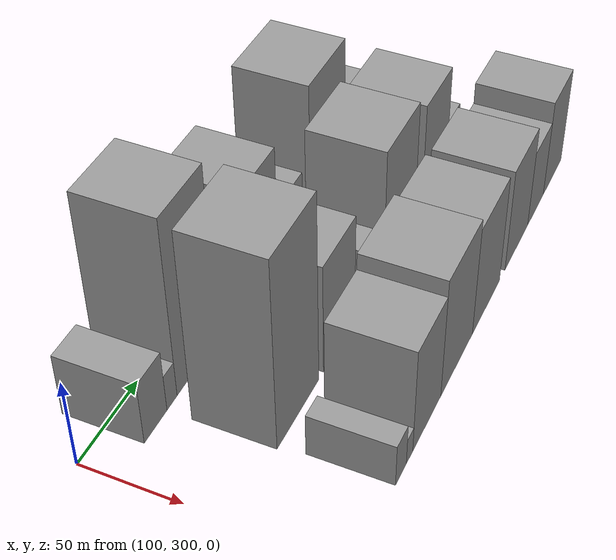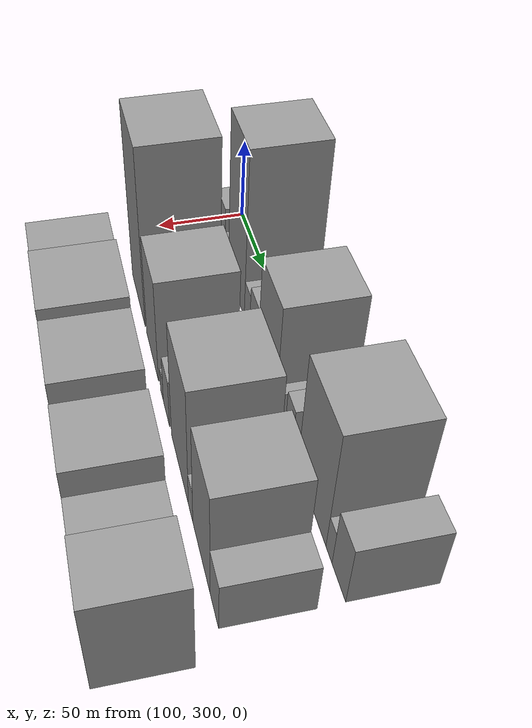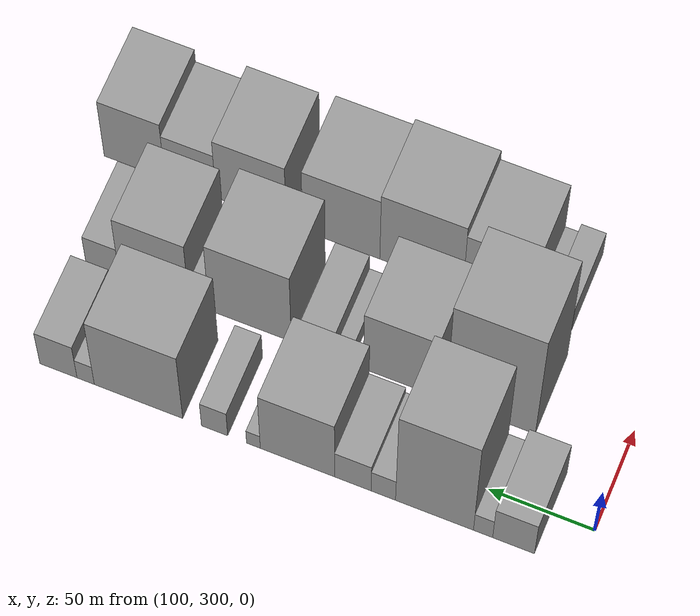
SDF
<sdf version="1.6">
 <world name="default">
  <model name="building_29">
   <static>1</static>
   <pose>100.0000 330.5013 0 0.000000 0.000000 0.000000</pose>
   <link name="link">
    <pose>0 0 18.00 0 0 0</pose>
    <collision name="collision"><geometry><box><size>40.0000 19.5408 36.0000</size></box></geometry></collision>
    <visual name="visual">
     <cast_shadows>0</cast_shadows>
     <geometry><box><size>40.0000 19.5408 36.0000</size></box></geometry>
     <material>
      <script>
       <uri>model://grey_wall/materials/scripts</uri>
       <uri>model://grey_wall/materials/textures</uri>
       <name>vrc/grey_wall</name>
      </script>
     </material>
    </visual>
   </link>
  </model>
  <model name="building_30">
   <static>1</static>
   <pose>100.0000 344.7738 0 0.000000 0.000000 0.000000</pose>
   <link name="link">
    <pose>0 0 10.50 0 0 0</pose>
    <collision name="collision"><geometry><box><size>40.0000 9.0042 21.0000</size></box></geometry></collision>
    <visual name="visual">
     <cast_shadows>0</cast_shadows>
     <geometry><box><size>40.0000 9.0042 21.0000</size></box></geometry>
     <material>
      <script>
       <uri>model://grey_wall/materials/scripts</uri>
       <uri>model://grey_wall/materials/textures</uri>
       <name>vrc/grey_wall</name>
      </script>
     </material>
    </visual>
   </link>
  </model>
  <model name="building_31">
   <static>1</static>
   <pose>100.0000 367.6238 0 0.000000 0.000000 0.000000</pose>
   <link name="link">
    <pose>0 0 51.00 0 0 0</pose>
    <collision name="collision"><geometry><box><size>40.0000 36.6956 102.0000</size></box></geometry></collision>
    <visual name="visual">
     <cast_shadows>0</cast_shadows>
     <geometry><box><size>40.0000 36.6956 102.0000</size></box></geometry>
     <material>
      <script>
       <uri>model://grey_wall/materials/scripts</uri>
       <uri>model://grey_wall/materials/textures</uri>
       <name>vrc/grey_wall</name>
      </script>
     </material>
    </visual>
   </link>
  </model>
  <model name="building_32">
   <static>1</static>
   <pose>100.0000 391.7401 0 0.000000 0.000000 0.000000</pose>
   <link name="link">
    <pose>0 0 12.00 0 0 0</pose>
    <collision name="collision"><geometry><box><size>40.0000 11.5371 24.0000</size></box></geometry></collision>
    <visual name="visual">
     <cast_shadows>0</cast_shadows>
     <geometry><box><size>40.0000 11.5371 24.0000</size></box></geometry>
     <material>
      <script>
       <uri>model://grey_wall/materials/scripts</uri>
       <uri>model://grey_wall/materials/textures</uri>
       <name>vrc/grey_wall</name>
      </script>
     </material>
    </visual>
   </link>
  </model>
  <model name="building_33">
   <static>1</static>
   <pose>100.0000 406.1605 0 0.000000 0.000000 0.000000</pose>
   <link name="link">
    <pose>0 0 15.00 0 0 0</pose>
    <collision name="collision"><geometry><box><size>40.0000 17.3037 30.0000</size></box></geometry></collision>
    <visual name="visual">
     <cast_shadows>0</cast_shadows>
     <geometry><box><size>40.0000 17.3037 30.0000</size></box></geometry>
     <material>
      <script>
       <uri>model://grey_wall/materials/scripts</uri>
       <uri>model://grey_wall/materials/textures</uri>
       <name>vrc/grey_wall</name>
      </script>
     </material>
    </visual>
   </link>
  </model>
  <model name="building_34">
   <static>1</static>
   <pose>100.0000 432.5061 0 0.000000 0.000000 0.000000</pose>
   <link name="link">
    <pose>0 0 31.50 0 0 0</pose>
    <collision name="collision"><geometry><box><size>40.0000 35.3875 63.0000</size></box></geometry></collision>
    <visual name="visual">
     <cast_shadows>0</cast_shadows>
     <geometry><box><size>40.0000 35.3875 63.0000</size></box></geometry>
     <material>
      <script>
       <uri>model://grey_wall/materials/scripts</uri>
       <uri>model://grey_wall/materials/textures</uri>
       <name>vrc/grey_wall</name>
      </script>
     </material>
    </visual>
   </link>
  </model>
  <model name="building_35">
   <static>1</static>
   <pose>100.0000 453.4936 0 0.000000 0.000000 0.000000</pose>
   <link name="link">
    <pose>0 0 7.50 0 0 0</pose>
    <collision name="collision"><geometry><box><size>40.0000 6.5874 15.0000</size></box></geometry></collision>
    <visual name="visual">
     <cast_shadows>0</cast_shadows>
     <geometry><box><size>40.0000 6.5874 15.0000</size></box></geometry>
     <material>
      <script>
       <uri>model://grey_wall/materials/scripts</uri>
       <uri>model://grey_wall/materials/textures</uri>
       <name>vrc/grey_wall</name>
      </script>
     </material>
    </visual>
   </link>
  </model>
  <model name="building_36">
   <static>1</static>
   <pose>100.0000 472.0813 0 0.000000 0.000000 0.000000</pose>
   <link name="link">
    <pose>0 0 13.50 0 0 0</pose>
    <collision name="collision"><geometry><box><size>40.0000 12.5881 27.0000</size></box></geometry></collision>
    <visual name="visual">
     <cast_shadows>0</cast_shadows>
     <geometry><box><size>40.0000 12.5881 27.0000</size></box></geometry>
     <material>
      <script>
       <uri>model://grey_wall/materials/scripts</uri>
       <uri>model://grey_wall/materials/textures</uri>
       <name>vrc/grey_wall</name>
      </script>
     </material>
    </visual>
   </link>
  </model>
  <model name="building_37">
   <static>1</static>
   <pose>100.0000 508.7297 0 0.000000 0.000000 0.000000</pose>
   <link name="link">
    <pose>0 0 36.00 0 0 0</pose>
    <collision name="collision"><geometry><box><size>40.0000 42.7086 72.0000</size></box></geometry></collision>
    <visual name="visual">
     <cast_shadows>0</cast_shadows>
     <geometry><box><size>40.0000 42.7086 72.0000</size></box></geometry>
     <material>
      <script>
       <uri>model://grey_wall/materials/scripts</uri>
       <uri>model://grey_wall/materials/textures</uri>
       <name>vrc/grey_wall</name>
      </script>
     </material>
    </visual>
   </link>
  </model>
  <model name="building_38">
   <static>1</static>
   <pose>100.0000 534.2845 0 0.000000 0.000000 0.000000</pose>
   <link name="link">
    <pose>0 0 10.50 0 0 0</pose>
    <collision name="collision"><geometry><box><size>40.0000 8.4009 21.0000</size></box></geometry></collision>
    <visual name="visual">
     <cast_shadows>0</cast_shadows>
     <geometry><box><size>40.0000 8.4009 21.0000</size></box></geometry>
     <material>
      <script>
       <uri>model://grey_wall/materials/scripts</uri>
       <uri>model://grey_wall/materials/textures</uri>
       <name>vrc/grey_wall</name>
      </script>
     </material>
    </visual>
   </link>
  </model>
  <model name="building_39">
   <static>1</static>
   <pose>100.0000 547.5120 0 0.000000 0.000000 0.000000</pose>
   <link name="link">
    <pose>0 0 18.00 0 0 0</pose>
    <collision name="collision"><geometry><box><size>40.0000 18.0543 36.0000</size></box></geometry></collision>
    <visual name="visual">
     <cast_shadows>0</cast_shadows>
     <geometry><box><size>40.0000 18.0543 36.0000</size></box></geometry>
     <material>
      <script>
       <uri>model://grey_wall/materials/scripts</uri>
       <uri>model://grey_wall/materials/textures</uri>
       <name>vrc/grey_wall</name>
      </script>
     </material>
    </visual>
   </link>
  </model>
  <model name="building_65">
   <static>1</static>
   <pose>152.0000 361.3127 0 0.000000 0.000000 0.000000</pose>
   <link name="link">
    <pose>0 0 54.00 0 0 0</pose>
    <collision name="collision"><geometry><box><size>40.0000 42.1664 108.0000</size></box></geometry></collision>
    <visual name="visual">
     <cast_shadows>0</cast_shadows>
     <geometry><box><size>40.0000 42.1664 108.0000</size></box></geometry>
     <material>
      <script>
       <uri>model://grey_wall/materials/scripts</uri>
       <uri>model://grey_wall/materials/textures</uri>
       <name>vrc/grey_wall</name>
      </script>
     </material>
    </visual>
   </link>
  </model>
  <model name="building_66">
   <static>1</static>
   <pose>152.0000 404.7607 0 0.000000 0.000000 0.000000</pose>
   <link name="link">
    <pose>0 0 31.50 0 0 0</pose>
    <collision name="collision"><geometry><box><size>40.0000 34.7295 63.0000</size></box></geometry></collision>
    <visual name="visual">
     <cast_shadows>0</cast_shadows>
     <geometry><box><size>40.0000 34.7295 63.0000</size></box></geometry>
     <material>
      <script>
       <uri>model://grey_wall/materials/scripts</uri>
       <uri>model://grey_wall/materials/textures</uri>
       <name>vrc/grey_wall</name>
      </script>
     </material>
    </visual>
   </link>
  </model>
  <model name="building_67">
   <static>1</static>
   <pose>152.0000 431.7771 0 0.000000 0.000000 0.000000</pose>
   <link name="link">
    <pose>0 0 7.50 0 0 0</pose>
    <collision name="collision"><geometry><box><size>40.0000 7.3034 15.0000</size></box></geometry></collision>
    <visual name="visual">
     <cast_shadows>0</cast_shadows>
     <geometry><box><size>40.0000 7.3034 15.0000</size></box></geometry>
     <material>
      <script>
       <uri>model://grey_wall/materials/scripts</uri>
       <uri>model://grey_wall/materials/textures</uri>
       <name>vrc/grey_wall</name>
      </script>
     </material>
    </visual>
   </link>
  </model>
  <model name="building_68">
   <static>1</static>
   <pose>152.0000 443.6562 0 0.000000 0.000000 0.000000</pose>
   <link name="link">
    <pose>0 0 15.00 0 0 0</pose>
    <collision name="collision"><geometry><box><size>40.0000 16.4549 30.0000</size></box></geometry></collision>
    <visual name="visual">
     <cast_shadows>0</cast_shadows>
     <geometry><box><size>40.0000 16.4549 30.0000</size></box></geometry>
     <material>
      <script>
       <uri>model://grey_wall/materials/scripts</uri>
       <uri>model://grey_wall/materials/textures</uri>
       <name>vrc/grey_wall</name>
      </script>
     </material>
    </visual>
   </link>
  </model>
  <model name="building_69">
   <static>1</static>
   <pose>152.0000 476.8452 0 0.000000 0.000000 0.000000</pose>
   <link name="link">
    <pose>0 0 36.00 0 0 0</pose>
    <collision name="collision"><geometry><box><size>40.0000 39.9231 72.0000</size></box></geometry></collision>
    <visual name="visual">
     <cast_shadows>0</cast_shadows>
     <geometry><box><size>40.0000 39.9231 72.0000</size></box></geometry>
     <material>
      <script>
       <uri>model://grey_wall/materials/scripts</uri>
       <uri>model://grey_wall/materials/textures</uri>
       <name>vrc/grey_wall</name>
      </script>
     </material>
    </visual>
   </link>
  </model>
  <model name="building_70">
   <static>1</static>
   <pose>152.0000 501.6556 0 0.000000 0.000000 0.000000</pose>
   <link name="link">
    <pose>0 0 10.50 0 0 0</pose>
    <collision name="collision"><geometry><box><size>40.0000 9.6977 21.0000</size></box></geometry></collision>
    <visual name="visual">
     <cast_shadows>0</cast_shadows>
     <geometry><box><size>40.0000 9.6977 21.0000</size></box></geometry>
     <material>
      <script>
       <uri>model://grey_wall/materials/scripts</uri>
       <uri>model://grey_wall/materials/textures</uri>
       <name>vrc/grey_wall</name>
      </script>
     </material>
    </visual>
   </link>
  </model>
  <model name="building_71">
   <static>1</static>
   <pose>152.0000 523.5886 0 0.000000 0.000000 0.000000</pose>
   <link name="link">
    <pose>0 0 31.50 0 0 0</pose>
    <collision name="collision"><geometry><box><size>40.0000 34.1682 63.0000</size></box></geometry></collision>
    <visual name="visual">
     <cast_shadows>0</cast_shadows>
     <geometry><box><size>40.0000 34.1682 63.0000</size></box></geometry>
     <material>
      <script>
       <uri>model://grey_wall/materials/scripts</uri>
       <uri>model://grey_wall/materials/textures</uri>
       <name>vrc/grey_wall</name>
      </script>
     </material>
    </visual>
   </link>
  </model>
  <model name="building_72">
   <static>1</static>
   <pose>152.0000 548.8191 0 0.000000 0.000000 0.000000</pose>
   <link name="link">
    <pose>0 0 15.00 0 0 0</pose>
    <collision name="collision"><geometry><box><size>40.0000 16.2928 30.0000</size></box></geometry></collision>
    <visual name="visual">
     <cast_shadows>0</cast_shadows>
     <geometry><box><size>40.0000 16.2928 30.0000</size></box></geometry>
     <material>
      <script>
       <uri>model://grey_wall/materials/scripts</uri>
       <uri>model://grey_wall/materials/textures</uri>
       <name>vrc/grey_wall</name>
      </script>
     </material>
    </visual>
   </link>
  </model>
  <model name="building_98">
   <static>1</static>
   <pose>204.0000 348.7117 0 0.000000 0.000000 0.000000</pose>
   <link name="link">
    <pose>0 0 12.00 0 0 0</pose>
    <collision name="collision"><geometry><box><size>40.0000 11.8877 24.0000</size></box></geometry></collision>
    <visual name="visual">
     <cast_shadows>0</cast_shadows>
     <geometry><box><size>40.0000 11.8877 24.0000</size></box></geometry>
     <material>
      <script>
       <uri>model://grey_wall/materials/scripts</uri>
       <uri>model://grey_wall/materials/textures</uri>
       <name>vrc/grey_wall</name>
      </script>
     </material>
    </visual>
   </link>
  </model>
  <model name="building_99">
   <static>1</static>
   <pose>204.0000 358.2454 0 0.000000 0.000000 0.000000</pose>
   <link name="link">
    <pose>0 0 7.50 0 0 0</pose>
    <collision name="collision"><geometry><box><size>40.0000 7.1798 15.0000</size></box></geometry></collision>
    <visual name="visual">
     <cast_shadows>0</cast_shadows>
     <geometry><box><size>40.0000 7.1798 15.0000</size></box></geometry>
     <material>
      <script>
       <uri>model://grey_wall/materials/scripts</uri>
       <uri>model://grey_wall/materials/textures</uri>
       <name>vrc/grey_wall</name>
      </script>
     </material>
    </visual>
   </link>
  </model>
  <model name="building_100">
   <static>1</static>
   <pose>204.0000 378.3557 0 0.000000 0.000000 0.000000</pose>
   <link name="link">
    <pose>0 0 30.00 0 0 0</pose>
    <collision name="collision"><geometry><box><size>40.0000 33.0407 60.0000</size></box></geometry></collision>
    <visual name="visual">
     <cast_shadows>0</cast_shadows>
     <geometry><box><size>40.0000 33.0407 60.0000</size></box></geometry>
     <material>
      <script>
       <uri>model://grey_wall/materials/scripts</uri>
       <uri>model://grey_wall/materials/textures</uri>
       <name>vrc/grey_wall</name>
      </script>
     </material>
    </visual>
   </link>
  </model>
  <model name="building_101">
   <static>1</static>
   <pose>204.0000 415.0387 0 0.000000 0.000000 0.000000</pose>
   <link name="link">
    <pose>0 0 34.50 0 0 0</pose>
    <collision name="collision"><geometry><box><size>40.0000 40.3254 69.0000</size></box></geometry></collision>
    <visual name="visual">
     <cast_shadows>0</cast_shadows>
     <geometry><box><size>40.0000 40.3254 69.0000</size></box></geometry>
     <material>
      <script>
       <uri>model://grey_wall/materials/scripts</uri>
       <uri>model://grey_wall/materials/textures</uri>
       <name>vrc/grey_wall</name>
      </script>
     </material>
    </visual>
   </link>
  </model>
  <model name="building_102">
   <static>1</static>
   <pose>204.0000 454.0302 0 0.000000 0.000000 0.000000</pose>
   <link name="link">
    <pose>0 0 31.50 0 0 0</pose>
    <collision name="collision"><geometry><box><size>40.0000 37.6575 63.0000</size></box></geometry></collision>
    <visual name="visual">
     <cast_shadows>0</cast_shadows>
     <geometry><box><size>40.0000 37.6575 63.0000</size></box></geometry>
     <material>
      <script>
       <uri>model://grey_wall/materials/scripts</uri>
       <uri>model://grey_wall/materials/textures</uri>
       <name>vrc/grey_wall</name>
      </script>
     </material>
    </visual>
   </link>
  </model>
  <model name="building_103">
   <static>1</static>
   <pose>204.0000 498.1391 0 0.000000 0.000000 0.000000</pose>
   <link name="link">
    <pose>0 0 30.00 0 0 0</pose>
    <collision name="collision"><geometry><box><size>40.0000 34.5605 60.0000</size></box></geometry></collision>
    <visual name="visual">
     <cast_shadows>0</cast_shadows>
     <geometry><box><size>40.0000 34.5605 60.0000</size></box></geometry>
     <material>
      <script>
       <uri>model://grey_wall/materials/scripts</uri>
       <uri>model://grey_wall/materials/textures</uri>
       <name>vrc/grey_wall</name>
      </script>
     </material>
    </visual>
   </link>
  </model>
  <model name="building_104">
   <static>1</static>
   <pose>204.0000 528.0548 0 0.000000 0.000000 0.000000</pose>
   <link name="link">
    <pose>0 0 22.50 0 0 0</pose>
    <collision name="collision"><geometry><box><size>40.0000 25.2708 45.0000</size></box></geometry></collision>
    <visual name="visual">
     <cast_shadows>0</cast_shadows>
     <geometry><box><size>40.0000 25.2708 45.0000</size></box></geometry>
     <material>
      <script>
       <uri>model://grey_wall/materials/scripts</uri>
       <uri>model://grey_wall/materials/textures</uri>
       <name>vrc/grey_wall</name>
      </script>
     </material>
    </visual>
   </link>
  </model>
  <model name="building_105">
   <static>1</static>
   <pose>204.0000 555.7095 0 0.000000 0.000000 0.000000</pose>
   <link name="link">
    <pose>0 0 28.50 0 0 0</pose>
    <collision name="collision"><geometry><box><size>40.0000 30.0388 57.0000</size></box></geometry></collision>
    <visual name="visual">
     <cast_shadows>0</cast_shadows>
     <geometry><box><size>40.0000 30.0388 57.0000</size></box></geometry>
     <material>
      <script>
       <uri>model://grey_wall/materials/scripts</uri>
       <uri>model://grey_wall/materials/textures</uri>
       <name>vrc/grey_wall</name>
      </script>
     </material>
    </visual>
   </link>
  </model>
 </world>
</sdf>
